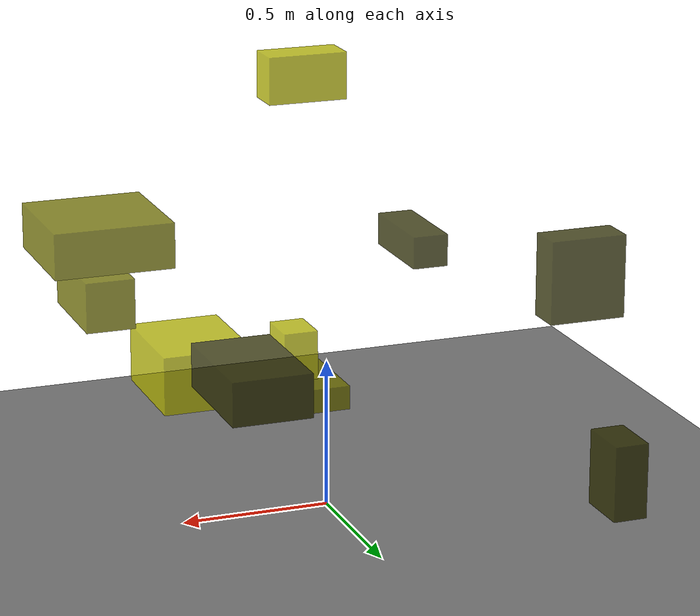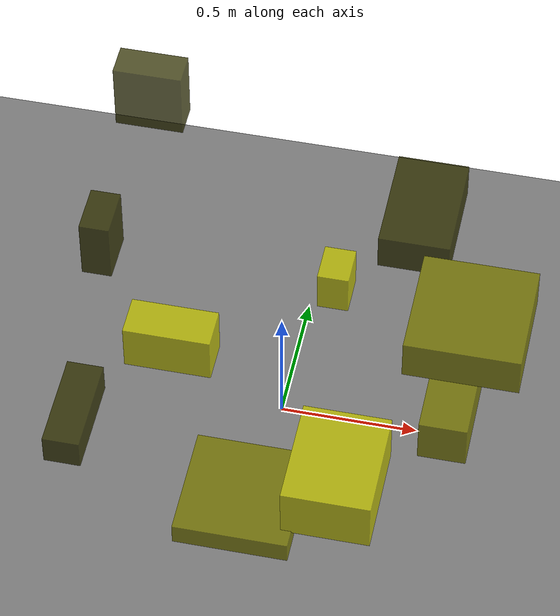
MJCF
<?xml version="1.0"?>
<mujoco model="obstacle_scene">
  <compiler angle="radian" coordinate="local"/>
  <option timestep="0.001" gravity="0 0 -9.81"/>

  <asset>
    <material name="obstacle_mat" rgba="0.8 0.8 0.0 0.8"/>
    <material name="ground_mat" rgba="0.5 0.5 0.5 1"/>
  </asset>

  <worldbody>
    <!-- Ground plane -->
    <geom name="ground" type="plane" size="3 3 0.1" material="ground_mat"/>

    <!-- Obstacles -->
    <body name="obstacle_0" pos="-0.807570 0.536635 0.192542">
      <geom name="obs_0" type="box" size="0.057313 0.094273 0.127718" rgba="0.2 0.2 0.0 0.8"/>
    </body>
    <body name="obstacle_1" pos="0.668978 -0.392791 0.699473">
      <geom name="obs_1" type="box" size="0.082269 0.182237 0.084430" rgba="0.5 0.5 0.0 0.8"/>
    </body>
    <body name="obstacle_2" pos="0.302126 -0.521954 0.359218">
      <geom name="obs_2" type="box" size="0.156911 0.198699 0.101277" rgba="0.8 0.8 0.0 0.8"/>
    </body>
    <body name="obstacle_3" pos="-0.574580 -0.678606 0.673924">
      <geom name="obs_3" type="box" size="0.063405 0.170304 0.057068" rgba="0.2 0.2 0.0 0.8"/>
    </body>
    <body name="obstacle_4" pos="-0.019856 -0.580649 0.222485">
      <geom name="obs_4" type="box" size="0.203514 0.204295 0.042131" rgba="0.5 0.5 0.0 0.8"/>
    </body>
    <body name="obstacle_5" pos="-0.194198 -0.774470 1.279108">
      <geom name="obs_5" type="box" size="0.141584 0.066773 0.083252" rgba="0.8 0.8 0.0 0.8"/>
    </body>
    <body name="obstacle_6" pos="0.420361 0.474275 0.639686">
      <geom name="obs_6" type="box" size="0.128538 0.202519 0.070769" rgba="0.2 0.2 0.0 0.8"/>
    </body>
    <body name="obstacle_7" pos="0.699259 -0.234707 0.936461">
      <geom name="obs_7" type="box" size="0.197818 0.200276 0.075319" rgba="0.5 0.5 0.0 0.8"/>
    </body>
    <body name="obstacle_8" pos="0.167453 0.148758 0.604042">
      <geom name="obs_8" type="box" size="0.056060 0.071332 0.080237" rgba="0.8 0.8 0.0 0.8"/>
    </body>
    <body name="obstacle_9" pos="-0.608059 0.628871 0.910782">
      <geom name="obs_9" type="box" size="0.124044 0.058762 0.133204" rgba="0.2 0.2 0.0 0.8"/>
    </body>
  </worldbody>
</mujoco>
